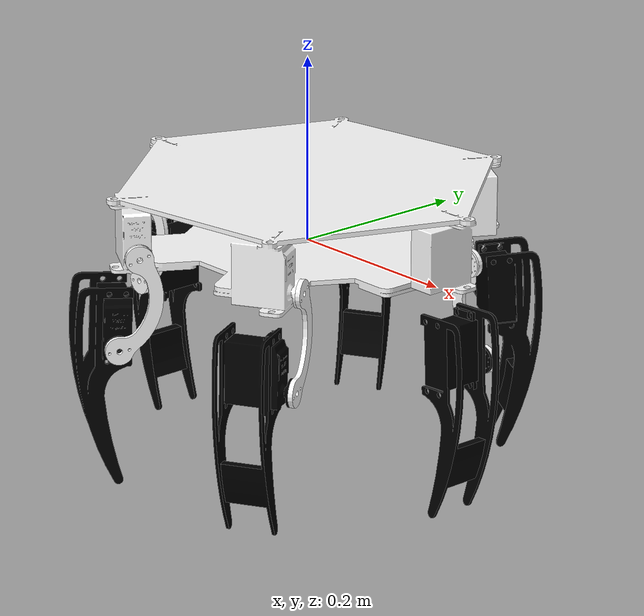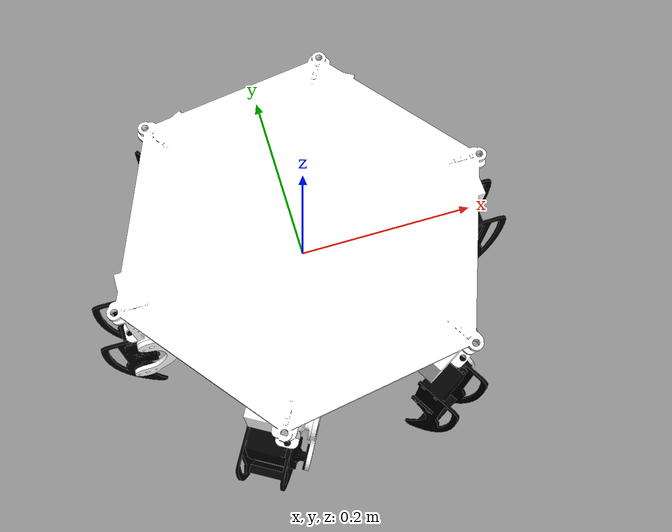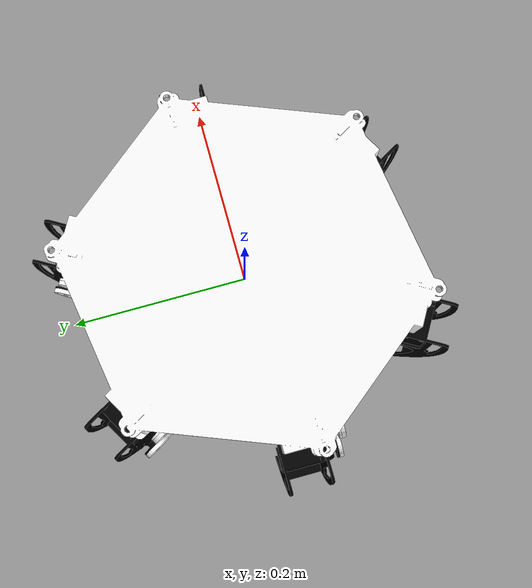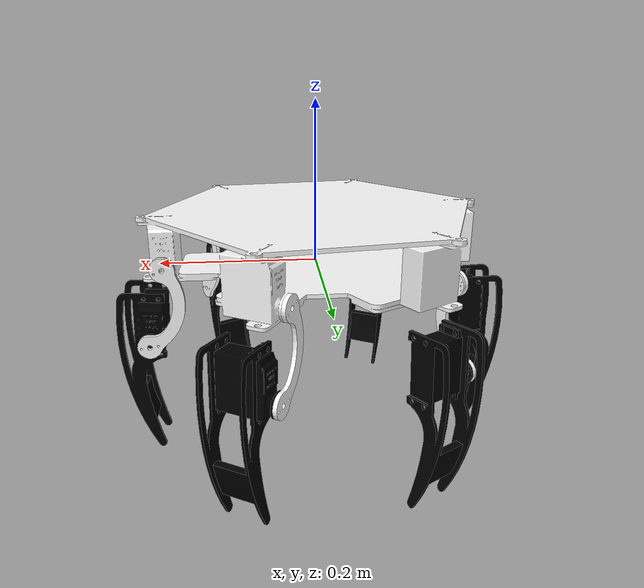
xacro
<?xml version="1.0" encoding="utf-8"?>

<robot name="hexa_wexa" xmlns:xacro="http://www.ros.org/wiki/xacro">

<xacro:include filename="$(find hexa_wexa)/urdf/hexa.gazebo" />

  <link
    name="base_link">
    <inertial>
      <origin
        xyz="-1.11022302462516E-16 8.32667268468867E-16 0.0329215154523213"
        rpy="0 0 0" />
      <mass
        value="2.06099139407896" />
      <inertia
        ixx="0.0101180981973123"
        ixy="-1.4361818168078E-15"
        ixz="1.13727748333106E-19"
        iyy="0.0101180981974174"
        iyz="5.28927273539273E-19"
        izz="0.0197053897177076" />
    </inertial>
    <visual>
      <origin
        xyz="0 0 0"
        rpy="0 0 0" />
      <geometry>
        <mesh
          filename="package://hexa_wexa/meshes/base_link.STL" />
      </geometry>
      <material
        name="">
        <color
          rgba="1 1 1 1" />
      </material>
    </visual>
    <collision>
      <origin
        xyz="0 0 0"
        rpy="0 0 0" />
      <geometry>
        <mesh
          filename="package://hexa_wexa/meshes/base_link.STL" />
      </geometry>
    </collision>
  </link>
  <link
    name="link_1">
    <inertial>
      <origin
        xyz="0 -0.000390541423954061 -0.0520431996238184"
        rpy="0 0 0" />
      <mass
        value="0.0161867713531685" />
      <inertia
        ixx="2.90017231403271E-05"
        ixy="6.7762635780344E-21"
        ixz="-8.50537169564026E-21"
        iyy="2.51034835558057E-05"
        iyz="-5.13859201514917E-06"
        izz="3.96568446515958E-06" />
    </inertial>
    <visual>
      <origin
        xyz="0 0 0"
        rpy="0 0 0" />
      <geometry>
        <mesh
          filename="package://hexa_wexa/meshes/link_1.STL" />
      </geometry>
      <material
        name="">
        <color
          rgba="1 1 1 1" />
      </material>
    </visual>
    <collision>
      <origin
        xyz="0 0 0"
        rpy="0 0 0" />
      <geometry>
        <mesh
          filename="package://hexa_wexa/meshes/link_1.STL" />
      </geometry>
    </collision>
  </link>
  <joint
    name="femur1"
    type="revolute">
    <origin
      xyz="0.14515 -0.13347 0.01"
      rpy="0 0 0.5236" />
    <parent
      link="base_link" />
    <child
      link="link_1" />
    <axis
      xyz="1 0 0" />
    <limit
      lower="-1.5708"
      upper="1.5708"
      effort="100"
      velocity="50" />
  </joint>
  <link
    name="link_1.1">
    <inertial>
      <origin
        xyz="-0.0426285870362159 -0.00501916657630452 -0.00729447440820258"
        rpy="0 0 0" />
      <mass
        value="0.172077268178404" />
      <inertia
        ixx="0.000231425971647549"
        ixy="-4.49143962276963E-10"
        ixz="1.89213210170286E-06"
        iyy="0.000275463997514187"
        iyz="1.27642229960103E-05"
        izz="7.5723265385277E-05" />
    </inertial>
    <visual>
      <origin
        xyz="0 0 0"
        rpy="0 0 0" />
      <geometry>
        <mesh
          filename="package://hexa_wexa/meshes/link_1.1.STL" />
      </geometry>
      <material
        name="">
        <color
          rgba="0 0 0 1" />
      </material>
    </visual>
    <collision>
      <origin
        xyz="0 0 0"
        rpy="0 0 0" />
      <geometry>
        <mesh
          filename="package://hexa_wexa/meshes/link_1.1.STL" />
      </geometry>
    </collision>
  </link>
  <joint
    name="leg1"
    type="revolute">
    <origin
      xyz="0 -0.02283 -0.099002"
      rpy="-0.046051 0 0" />
    <parent
      link="link_1" />
    <child
      link="link_1.1" />
    <axis
      xyz="1 0 0" />
    <limit
      lower="-1.5708"
      upper="1.5708"
      effort="100"
      velocity="50" />
  </joint>
  <link
    name="link_2">
    <inertial>
      <origin
        xyz="-8.32667268468867E-17 -0.000390541423954061 -0.0520431996238183"
        rpy="0 0 0" />
      <mass
        value="0.0161867713531686" />
      <inertia
        ixx="2.90017231403271E-05"
        ixy="1.85801300952691E-20"
        ixz="2.02679642762048E-21"
        iyy="2.51034835558058E-05"
        iyz="-5.13859201514918E-06"
        izz="3.9656844651596E-06" />
    </inertial>
    <visual>
      <origin
        xyz="0 0 0"
        rpy="0 0 0" />
      <geometry>
        <mesh
          filename="package://hexa_wexa/meshes/link_2.STL" />
      </geometry>
      <material
        name="">
        <color
          rgba="1 1 1 1" />
      </material>
    </visual>
    <collision>
      <origin
        xyz="0 0 0"
        rpy="0 0 0" />
      <geometry>
        <mesh
          filename="package://hexa_wexa/meshes/link_2.STL" />
      </geometry>
    </collision>
  </link>
  <joint
    name="femur2"
    type="revolute">
    <origin
      xyz="0.18816 0.05897 0.01"
      rpy="0 0 1.5708" />
    <parent
      link="base_link" />
    <child
      link="link_2" />
    <axis
      xyz="1 0 0" />
    <limit
      lower="-1.5708"
      upper="1.5708"
      effort="100"
      velocity="50" />
  </joint>
  <link
    name="link_2.2">
    <inertial>
      <origin
        xyz="-0.0426285870058558 -0.00501916661698198 -0.00729447436625907"
        rpy="0 0 0" />
      <mass
        value="0.172077268568037" />
      <inertia
        ixx="0.000231425083797164"
        ixy="-4.48969659915652E-10"
        ixz="1.89213220657379E-06"
        iyy="0.000275463082426943"
        iyz="1.27642153499068E-05"
        izz="7.57233043712846E-05" />
    </inertial>
    <visual>
      <origin
        xyz="0 0 0"
        rpy="0 0 0" />
      <geometry>
        <mesh
          filename="package://hexa_wexa/meshes/link_2.2.STL" />
      </geometry>
      <material
        name="">
        <color
          rgba="0 0 0 1" />
      </material>
    </visual>
    <collision>
      <origin
        xyz="0 0 0"
        rpy="0 0 0" />
      <geometry>
        <mesh
          filename="package://hexa_wexa/meshes/link_2.2.STL" />
      </geometry>
    </collision>
  </link>
  <joint
    name="leg2"
    type="revolute">
    <origin
      xyz="0 -0.02283 -0.099002"
      rpy="-0.046051 0 0" />
    <parent
      link="link_2" />
    <child
      link="link_2.2" />
    <axis
      xyz="1 0 0" />
    <limit
      lower="-1.5708"
      upper="1.5708"
      effort="100"
      velocity="50" />
  </joint>
  <link
    name="link_3">
    <inertial>
      <origin
        xyz="-5.55111512312578E-17 -0.000390541423954074 -0.0520431996238182"
        rpy="0 0 0" />
      <mass
        value="0.0161867713531686" />
      <inertia
        ixx="2.90017231403272E-05"
        ixy="2.79520872593919E-20"
        ixz="1.18265634115863E-20"
        iyy="2.51034835558058E-05"
        iyz="-5.13859201514919E-06"
        izz="3.96568446515959E-06" />
    </inertial>
    <visual>
      <origin
        xyz="0 0 0"
        rpy="0 0 0" />
      <geometry>
        <mesh
          filename="package://hexa_wexa/meshes/link_3.STL" />
      </geometry>
      <material
        name="">
        <color
          rgba="1 1 1 1" />
      </material>
    </visual>
    <collision>
      <origin
        xyz="0 0 0"
        rpy="0 0 0" />
      <geometry>
        <mesh
          filename="package://hexa_wexa/meshes/link_3.STL" />
      </geometry>
    </collision>
  </link>
  <joint
    name="femur3"
    type="revolute">
    <origin
      xyz="0.043011 0.19244 0.01"
      rpy="0 0 2.618" />
    <parent
      link="base_link" />
    <child
      link="link_3" />
    <axis
      xyz="1 0 0" />
    <limit
      lower="-1.5708"
      upper="1.5708"
      effort="100"
      velocity="50" />
  </joint>
  <link
    name="link_3.3">
    <inertial>
      <origin
        xyz="-0.042807342236036 -0.00501916662215592 -0.00615932155635768"
        rpy="0 0 0" />
      <mass
        value="0.172077268091205" />
      <inertia
        ixx="0.00023141657003237"
        ixy="3.38677520311463E-07"
        ixz="-2.24586714486416E-06"
        iyy="0.000275463997357553"
        iyz="1.27597291678561E-05"
        izz="7.57326668898429E-05" />
    </inertial>
    <visual>
      <origin
        xyz="0 0 0"
        rpy="0 0 0" />
      <geometry>
        <mesh
          filename="package://hexa_wexa/meshes/link_3.3.STL" />
      </geometry>
      <material
        name="">
        <color
          rgba="0 0 0 1" />
      </material>
    </visual>
    <collision>
      <origin
        xyz="0 0 0"
        rpy="0 0 0" />
      <geometry>
        <mesh
          filename="package://hexa_wexa/meshes/link_3.3.STL" />
      </geometry>
    </collision>
  </link>
  <joint
    name="leg3"
    type="revolute">
    <origin
      xyz="0 -0.02283 -0.099002"
      rpy="-0.046067 -0.026543 0.0012235" />
    <parent
      link="link_3" />
    <child
      link="link_3.3" />
    <axis
      xyz="1 0 0" />
    <limit
      lower="-1.5708"
      upper="1.5708"
      effort="100"
      velocity="50" />
  </joint>
  <link
    name="link_4">
    <inertial>
      <origin
        xyz="-6.93889390390723E-18 -0.000390541423954116 -0.0520431996238183"
        rpy="0 0 0" />
      <mass
        value="0.0161867713531686" />
      <inertia
        ixx="2.90017231403271E-05"
        ixy="4.74338450462408E-20"
        ixz="6.26552831118306E-20"
        iyy="2.51034835558057E-05"
        iyz="-5.13859201514918E-06"
        izz="3.96568446515959E-06" />
    </inertial>
    <visual>
      <origin
        xyz="0 0 0"
        rpy="0 0 0" />
      <geometry>
        <mesh
          filename="package://hexa_wexa/meshes/link_4.STL" />
      </geometry>
      <material
        name="">
        <color
          rgba="1 1 1 1" />
      </material>
    </visual>
    <collision>
      <origin
        xyz="0 0 0"
        rpy="0 0 0" />
      <geometry>
        <mesh
          filename="package://hexa_wexa/meshes/link_4.STL" />
      </geometry>
    </collision>
  </link>
  <joint
    name="femur4"
    type="revolute">
    <origin
      xyz="-0.14515 0.13347 0.01"
      rpy="0 0 -2.618" />
    <parent
      link="base_link" />
    <child
      link="link_4" />
    <axis
      xyz="1 0 0" />
    <limit
      lower="-1.5708"
      upper="1.5708"
      effort="100"
      velocity="50" />
  </joint>
  <link
    name="link_4.4">
    <inertial>
      <origin
        xyz="-0.0424197356336695 -0.00501916657630445 -0.00842447733487048"
        rpy="0 0 0" />
      <mass
        value="0.172077268178403" />
      <inertia
        ixx="0.000231215556596787"
        ixy="-3.39575333485197E-07"
        ixz="6.02478897876616E-06"
        iyy="0.000275463997514186"
        iyz="1.27597052272569E-05"
        izz="7.59336804360387E-05" />
    </inertial>
    <visual>
      <origin
        xyz="0 0 0"
        rpy="0 0 0" />
      <geometry>
        <mesh
          filename="package://hexa_wexa/meshes/link_4.4.STL" />
      </geometry>
      <material
        name="">
        <color
          rgba="0 0 0 1" />
      </material>
    </visual>
    <collision>
      <origin
        xyz="0 0 0"
        rpy="0 0 0" />
      <geometry>
        <mesh
          filename="package://hexa_wexa/meshes/link_4.4.STL" />
      </geometry>
    </collision>
  </link>
  <joint
    name="leg4"
    type="revolute">
    <origin
      xyz="0 -0.02283 -0.099002"
      rpy="-0.046067 0.026543 -0.0012235" />
    <parent
      link="link_4" />
    <child
      link="link_4.4" />
    <axis
      xyz="1 0 0" />
    <limit
      lower="-1.5708"
      upper="1.5708"
      effort="100"
      velocity="50" />
  </joint>
  <link
    name="link_5">
    <inertial>
      <origin
        xyz="-5.55111512312578E-17 -0.000390541423954144 -0.0520431996238182"
        rpy="0 0 0" />
      <mass
        value="0.0161867713531685" />
      <inertia
        ixx="2.90017231403272E-05"
        ixy="-6.20197374025219E-21"
        ixz="-1.32695616895557E-20"
        iyy="2.51034835558058E-05"
        iyz="-5.13859201514918E-06"
        izz="3.96568446515958E-06" />
    </inertial>
    <visual>
      <origin
        xyz="0 0 0"
        rpy="0 0 0" />
      <geometry>
        <mesh
          filename="package://hexa_wexa/meshes/link_5.STL" />
      </geometry>
      <material
        name="">
        <color
          rgba="1 1 1 1" />
      </material>
    </visual>
    <collision>
      <origin
        xyz="0 0 0"
        rpy="0 0 0" />
      <geometry>
        <mesh
          filename="package://hexa_wexa/meshes/link_5.STL" />
      </geometry>
    </collision>
  </link>
  <joint
    name="femur5"
    type="revolute">
    <origin
      xyz="-0.18816 -0.05897 0.01"
      rpy="0 0 -1.5708" />
    <parent
      link="base_link" />
    <child
      link="link_5" />
    <axis
      xyz="1 0 0" />
    <limit
      lower="-1.5708"
      upper="1.5708"
      effort="100"
      velocity="50" />
  </joint>
  <link
    name="link_5.5">
    <inertial>
      <origin
        xyz="-0.0426285870058558 -0.00501916661698201 -0.00729447436625913"
        rpy="0 0 0" />
      <mass
        value="0.172077268568037" />
      <inertia
        ixx="0.000231425083797165"
        ixy="-4.48969659886024E-10"
        ixz="1.89213220657372E-06"
        iyy="0.000275463082426944"
        iyz="1.2764215349907E-05"
        izz="7.57233043712848E-05" />
    </inertial>
    <visual>
      <origin
        xyz="0 0 0"
        rpy="0 0 0" />
      <geometry>
        <mesh
          filename="package://hexa_wexa/meshes/link_5.5.STL" />
      </geometry>
      <material
        name="">
        <color
          rgba="0 0 0 1" />
      </material>
    </visual>
    <collision>
      <origin
        xyz="0 0 0"
        rpy="0 0 0" />
      <geometry>
        <mesh
          filename="package://hexa_wexa/meshes/link_5.5.STL" />
      </geometry>
    </collision>
  </link>
  <joint
    name="leg5"
    type="revolute">
    <origin
      xyz="0 -0.02283 -0.099002"
      rpy="-0.046051 0 0" />
    <parent
      link="link_5" />
    <child
      link="link_5.5" />
    <axis
      xyz="1 0 0" />
    <limit
      lower="-1.5708"
      upper="1.5708"
      effort="100"
      velocity="50" />
  </joint>
  <link
    name="link_6">
    <inertial>
      <origin
        xyz="-5.55111512312578E-17 -0.000390541423954061 -0.0520431996238183"
        rpy="0 0 0" />
      <mass
        value="0.0161867713531686" />
      <inertia
        ixx="2.90017231403271E-05"
        ixy="-5.0821976835258E-21"
        ixz="-2.98382166343931E-20"
        iyy="2.51034835558057E-05"
        iyz="-5.13859201514916E-06"
        izz="3.96568446515959E-06" />
    </inertial>
    <visual>
      <origin
        xyz="0 0 0"
        rpy="0 0 0" />
      <geometry>
        <mesh
          filename="package://hexa_wexa/meshes/link_6.STL" />
      </geometry>
      <material
        name="">
        <color
          rgba="1 1 1 1" />
      </material>
    </visual>
    <collision>
      <origin
        xyz="0 0 0"
        rpy="0 0 0" />
      <geometry>
        <mesh
          filename="package://hexa_wexa/meshes/link_6.STL" />
      </geometry>
    </collision>
  </link>
  <joint
    name="femur6"
    type="revolute">
    <origin
      xyz="-0.043011 -0.19244 0.01"
      rpy="0 0 -0.5236" />
    <parent
      link="base_link" />
    <child
      link="link_6" />
    <axis
      xyz="1 0 0" />
    <limit
      lower="-1.5708"
      upper="1.5708"
      effort="100"
      velocity="50" />
  </joint>
  <link
    name="link_6.6">
    <inertial>
      <origin
        xyz="-0.0426285870484895 -0.00501916662215596 -0.00729447445653715"
        rpy="0 0 0" />
      <mass
        value="0.172077268091205" />
      <inertia
        ixx="0.000231425971559307"
        ixy="-4.48988344814688E-10"
        ixz="1.8921322455992E-06"
        iyy="0.000275463997357554"
        iyz="1.27642230746021E-05"
        izz="7.57232653629073E-05" />
    </inertial>
    <visual>
      <origin
        xyz="0 0 0"
        rpy="0 0 0" />
      <geometry>
        <mesh
          filename="package://hexa_wexa/meshes/link_6.6.STL" />
      </geometry>
      <material
        name="">
        <color
          rgba="0 0 0 1" />
      </material>
    </visual>
    <collision>
      <origin
        xyz="0 0 0"
        rpy="0 0 0" />
      <geometry>
        <mesh
          filename="package://hexa_wexa/meshes/link_6.6.STL" />
      </geometry>
    </collision>
  </link>
  <joint
    name="leg6"
    type="revolute">
    <origin
      xyz="0 -0.02283 -0.099002"
      rpy="-0.046051 0 0" />
    <parent
      link="link_6" />
    <child
      link="link_6.6" />
    <axis
      xyz="1 0 0" />
    <limit
      lower="-1.5708"
      upper="1.5708"
      effort="100"
      velocity="50" />
  </joint>
</robot>
